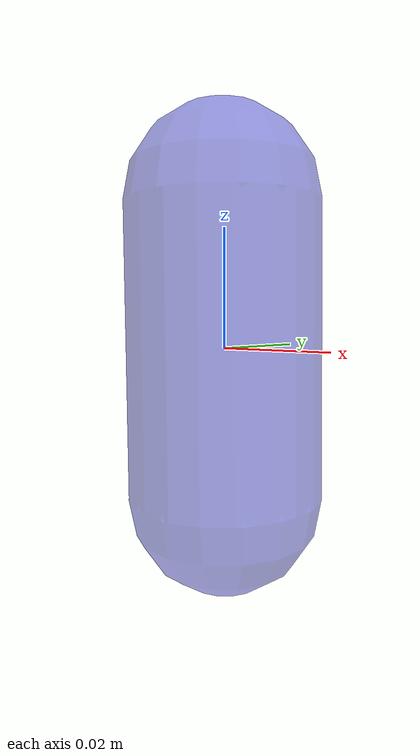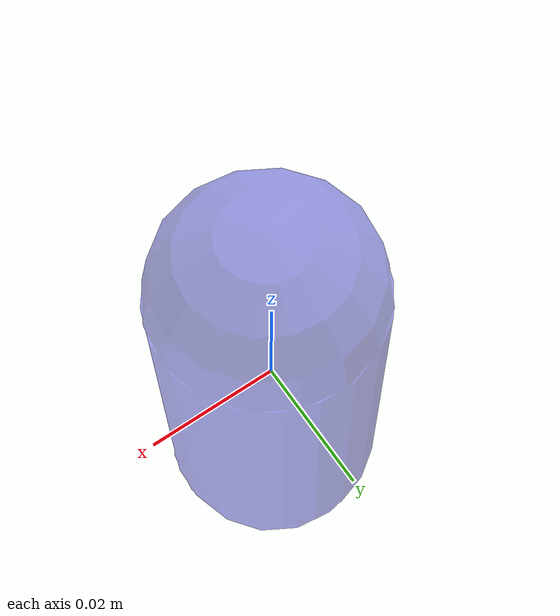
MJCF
<mujoco model="can-visual">
  <asset>
    <mesh file="meshes/can.stl" name="can_mesh"/>
  </asset>
  <worldbody>
    <body>
      <body name="object">
        <geom pos="0.000068 -0.000242 -0.000296" type="capsule" rgba="0.2 0.2 0.8 0.5" conaffinity="0" contype="0" group="1" mass="0.0001" quat="0.010322 -0.974585 -0.223779 0.000000" size="0.016128 0.024338"/>
      </body>
      <site rgba="0 0 0 0" size="0.005" pos="0 0 -0.06" name="bottom_site"/>
      <site rgba="0 0 0 0" size="0.005" pos="0 0 0.04" name="top_site"/>
      <site rgba="0 0 0 0" size="0.005" pos="0.025 0.025 0" name="horizontal_radius_site"/>
    </body>
  </worldbody>
</mujoco>
